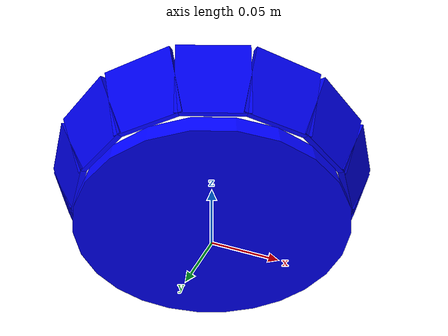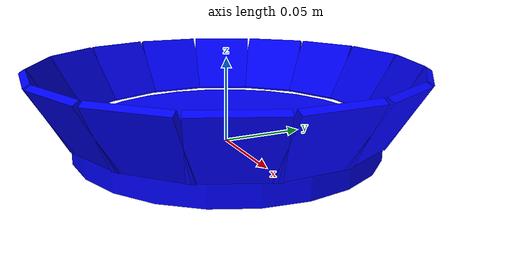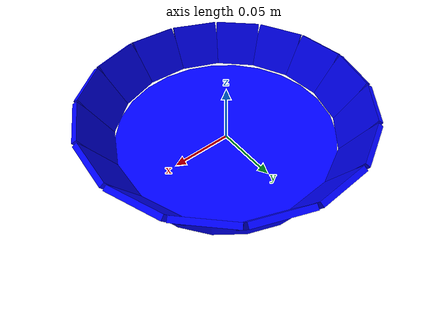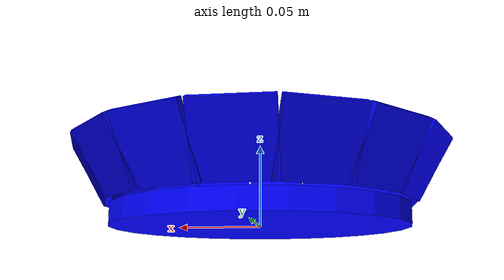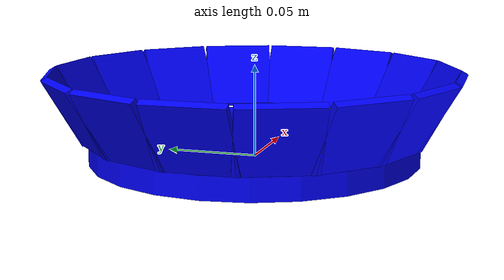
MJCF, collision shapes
<mujoco model="Bowl">

  <default>
    <geom solref="0.01 1" solimp=".95 .99 .0001" condim="1"/>
    <default class="visual">
      <geom group="2" type="mesh" contype="0" conaffinity="0"/>
    </default>
    <default class="collision">
      <geom group="3" rgba="0 0 1 1" contype="1" conaffinity="1"/>
    </default>
  </default>

  <asset>
    <material name="White_Gloss" specular="0.5" shininess="0.36" rgba="0.8 0.8 0.8 1"/>
    <mesh file="Bowl.obj"/>
  </asset>

  <worldbody>

  <body name="Bowl">
    <geom type="mesh"  material="White_Gloss" mesh="Bowl" class="visual" quat="0.707 0.707 0 0"/>
    <geom class="collision" type="cylinder" pos="0 0 0.005" size="0.09 0.006" />

    <body name="hollow_cylinder" pos="0 0 0.04">
      <geom class="collision" type="box" size="0.002 0.0205 0.0200" pos="0.0998 0.0000 -0.0100" quat="0.965926 0.000000 0.258819 0.000000"/>
      <geom class="collision" type="box" size="0.002 0.0205 0.0200" pos="0.0922 0.0382 -0.0100" quat="0.947366 -0.050493 0.253846 0.188443"/>
      <geom class="collision" type="box" size="0.002 0.0205 0.0200" pos="0.0706 0.0706 -0.0100" quat="0.892399 -0.099046 0.239118 0.369644"/>
      <geom class="collision" type="box" size="0.002 0.0205 0.0200" pos="0.0382 0.0922 -0.0100" quat="0.803138 -0.143792 0.215200 0.536640"/>
      <geom class="collision" type="box" size="0.002 0.0205 0.0200" pos="0.0000 0.0998 -0.0100" quat="0.683013 -0.183013 0.183013 0.683013"/>
      <geom class="collision" type="box" size="0.002 0.0205 0.0200" pos="-0.0382 0.0922 -0.0100" quat="0.536640 -0.215200 0.143792 0.803138"/>
      <geom class="collision" type="box" size="0.002 0.0205 0.0200" pos="-0.0706 0.0706 -0.0100" quat="0.369644 -0.239118 0.099046 0.892399"/>
      <geom class="collision" type="box" size="0.002 0.0205 0.0200" pos="-0.0922 0.0382 -0.0100" quat="0.188443 -0.253846 0.050493 0.947366"/>
      <geom class="collision" type="box" size="0.002 0.0205 0.0200" pos="-0.0998 0.0000 -0.0100" quat="0.000000 -0.258819 0.000000 0.965926"/>
      <geom class="collision" type="box" size="0.002 0.0205 0.0200" pos="-0.0922 -0.0382 -0.0100" quat="-0.188443 -0.253846 -0.050493 0.947366"/>
      <geom class="collision" type="box" size="0.002 0.0205 0.0200" pos="-0.0706 -0.0706 -0.0100" quat="-0.369644 -0.239118 -0.099046 0.892399"/>
      <geom class="collision" type="box" size="0.002 0.0205 0.0200" pos="-0.0382 -0.0922 -0.0100" quat="-0.536640 -0.215200 -0.143792 0.803138"/>
      <geom class="collision" type="box" size="0.002 0.0205 0.0200" pos="-0.0000 -0.0998 -0.0100" quat="-0.683013 -0.183013 -0.183013 0.683013"/>
      <geom class="collision" type="box" size="0.002 0.0205 0.0200" pos="0.0382 -0.0922 -0.0100" quat="-0.803138 -0.143792 -0.215200 0.536640"/>
      <geom class="collision" type="box" size="0.002 0.0205 0.0200" pos="0.0706 -0.0706 -0.0100" quat="-0.892399 -0.099046 -0.239118 0.369644"/>
      <geom class="collision" type="box" size="0.002 0.0205 0.0200" pos="0.0922 -0.0382 -0.0100" quat="-0.947366 -0.050493 -0.253846 0.188443"/>
    </body>

  </body>

  </worldbody>

</mujoco>
